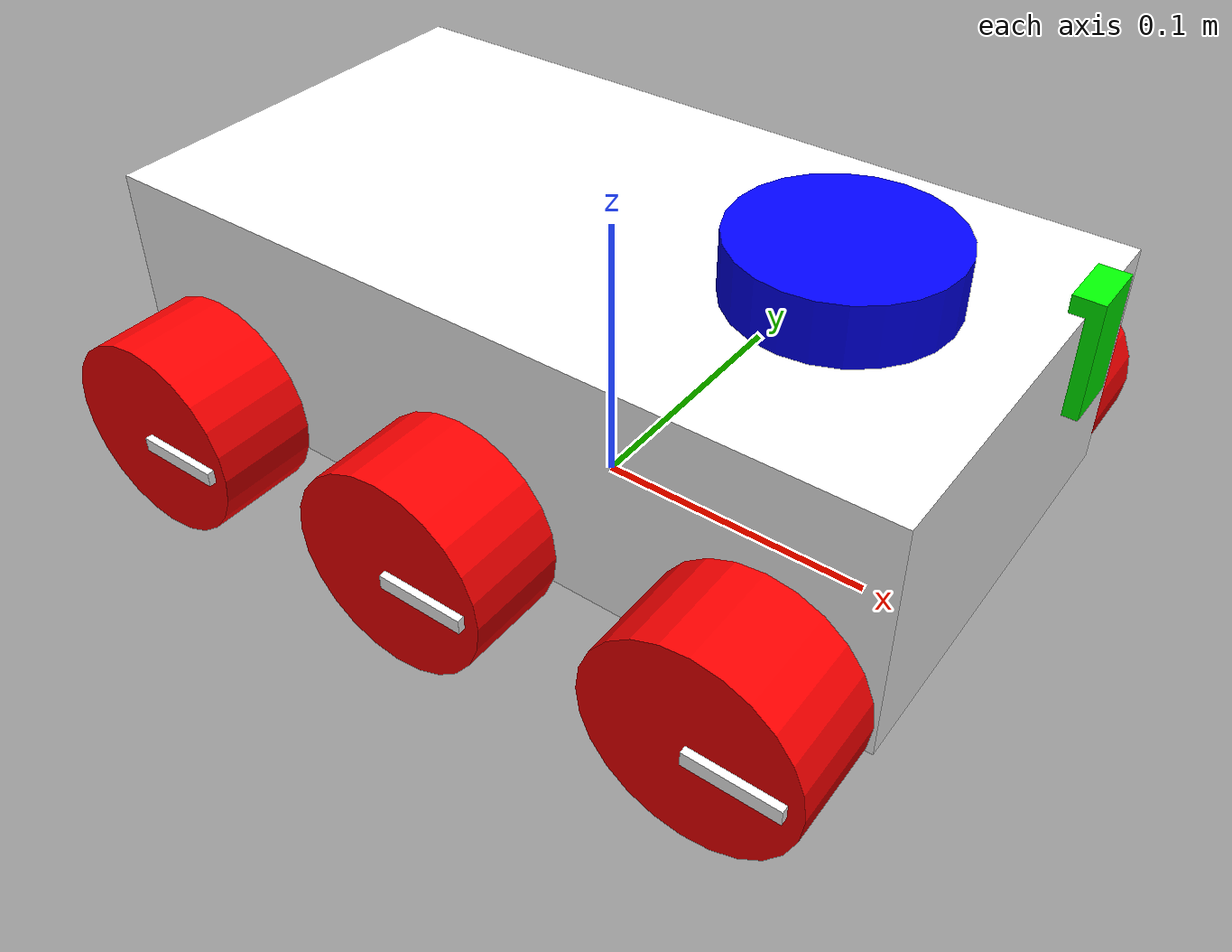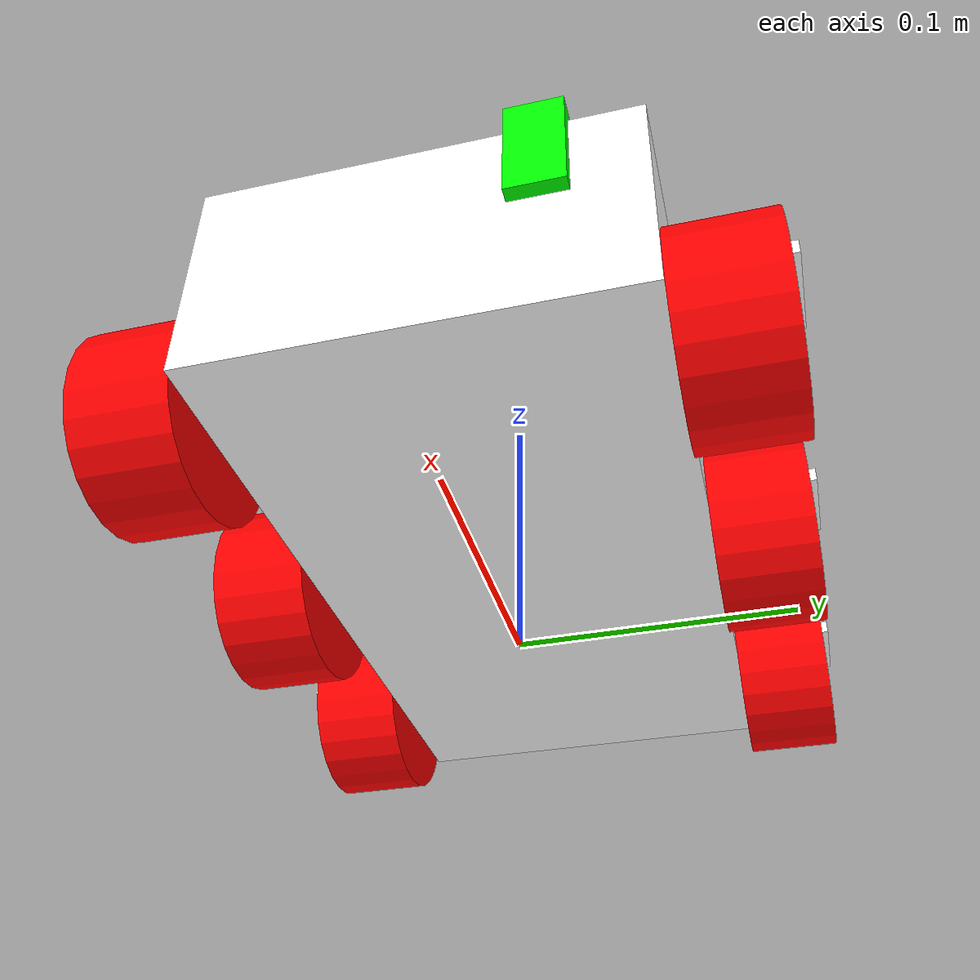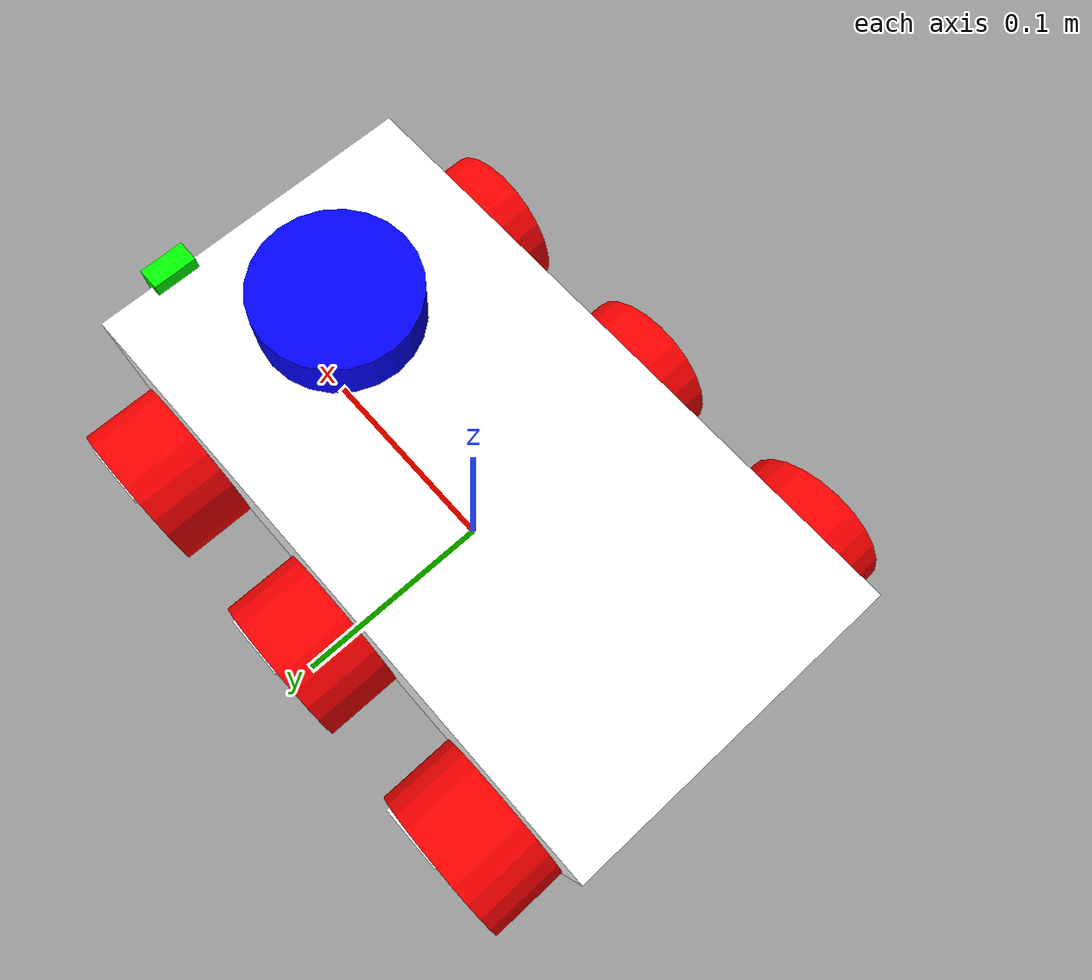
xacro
<?xml version="1.0"?>
<robot xmlns:xacro="http://www.ros.org/wiki/xacro"  name="bartrover">

    <xacro:arg name="use_ros2_control" default="true"/>
    <xacro:arg name="sim_mode" default="false"/>

    <!-- ********************** CALLING ALL XACRO FILES *********************************  -->
    <xacro:include filename="bartrover_core.xacro" />
    <xacro:include filename="lidar.xacro" />
    <xacro:include filename="camera.xacro" />

    <xacro:if value="$(arg use_ros2_control)">
        <xacro:include filename="ros2_control.xacro" />
    </xacro:if>
    <xacro:unless value="$(arg use_ros2_control)">
        <xacro:include filename="gazebo_control.xacro" />
    </xacro:unless>

</robot>

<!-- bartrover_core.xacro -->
<robot xmlns:xacro="http://www.ros.org/wiki/xacro"  name="bartrover">

    <!-- ********************** INERTIA MACROS *********************************  -->
    <xacro:include filename="inertial_macros.xacro" />
    <!-- ********************** MATERIAL MACROS *********************************  -->
    <xacro:include filename="material_macros.xacro" />
    <!-- ********************** CONSTANTS MACROS *********************************  -->
    <xacro:include filename="constants_macros.xacro" />

	<!-- ********************** BASE LINK *********************************  -->
    <link name="base_link">
    </link>
    <gazebo reference="base_link">
        <material>Gazebo/White</material>
    </gazebo>

    <!-- ********************** BODY LINK *********************************  -->
    <joint name="base_joint" type="fixed">
        <axis rpy="0 0 0" xyz="0 0 0"/>
        <parent link="base_link" />
        <child link="body_link" />
        <origin xyz="0 0 ${wheel_radius}" rpy="0 0 0"/>
    </joint>

    <link name="body_link">
		<visual>
			<origin xyz="0 0 0.03" rpy="0 0 0" />
            <geometry>
                <box size="${body_length} ${wheel_separation} ${body_height}"/>
            </geometry>
			<material name="White" />
		</visual>
		<collision>
			<origin xyz="0 0 0.03" rpy="0 0 0" />
            <geometry>
                <box size="${body_length} ${wheel_separation} ${body_height}"/>
            </geometry>
		</collision>
        <xacro:inertial_box mass="${body_mass}" x="${body_length}" y="${wheel_separation}" z="${body_height}">
            <origin xyz="0 0 0.03" rpy="0 0 0"/>
        </xacro:inertial_box>
    </link>
    <gazebo reference="body_link">
        <material>Gazebo/White</material>
    </gazebo>

    <!-- ********************** WHEEL LINKS REAR ********************************* -->
    <!-- ********************** LEFT ********************************* -->
    <joint name="rear_left_wheel_joint" type="continuous">
        <parent link="body_link" />
        <child link="rear_left_wheel" />
        <origin xyz="-0.104 ${wheel_separation/2 + wheel_width/2} 0" rpy="0 0 0"/>
        <axis xyz="0 1 0"/>
        <limit effort="${limit_effort}" velocity="${limit_velocity}"/>
        <dynamics damping="${dynamic_damping}" friction="${spinning_friction}"/>
    </joint>

    <link name="rear_left_wheel">
        <visual>
			<origin xyz="0 0 0" rpy="${PI / 2} 0 0" />
            <geometry>
                <cylinder radius="${wheel_radius}" length="${wheel_width}"/>
            </geometry>
            <material name="Red" />
        </visual>
        <collision>
			<origin xyz="0 0 0" rpy="${PI / 2} 0 0" />
            <geometry>
                <cylinder radius="${wheel_radius}" length="${wheel_width}"/>
            </geometry>
        </collision>
        <xacro:inertial_cylinder mass="${wheel_mass}" length="${wheel_width}" radius="${wheel_radius}">
            <origin xyz="0 0 0" rpy="0 0 0"/>
        </xacro:inertial_cylinder>
    </link>
    <gazebo reference="rear_left_wheel">
        <mu1 value="${lateral_friction}" />
        <mu2 value="${spinning_friction}" />
        <kp value="${contact_stiffness}" />
        <kd value="${contact_damping}" />
        <fdir1 value="1 0 0"/>
        <minDepth>0</minDepth>
        <material>Gazebo/Red</material>
    </gazebo>

    <joint name="rear_left_marker_joint" type="fixed">
        <parent link="rear_left_wheel" />
        <child link="rear_left_marker" />
        <origin xyz="0.015 0.0175 0" rpy="0 0 0" />
    </joint>

    <link name="rear_left_marker">
        <visual>
            <origin xyz="0 0 0" rpy="0 0 0" />
            <geometry>
                <box size="0.03 0.005 0.005" />
            </geometry>
            <material name="White" />
        </visual>
        <inertial>
            <mass value="${marker_mass}" />
            <inertia ixx="0.0" ixy="0.0" ixz="0.0" iyy="0.0" iyz="0.0" izz="0.0" />
        </inertial>
    </link>
    <gazebo reference="rear_left_marker">
        <material>Gazebo/White</material>
    </gazebo>

    <!-- ********************** RIGHT ********************************* -->
    <joint name="rear_right_wheel_joint" type="continuous">
        <parent link="body_link" />
        <child link="rear_right_wheel" />
		<origin xyz="-0.104 ${-1 * (wheel_separation/2 + wheel_width/2)} 0" rpy="0 0 0"/>
        <axis xyz="0 1 0"/>
        <limit effort="${limit_effort}" velocity="${limit_velocity}"/>
        <dynamics damping="${dynamic_damping}" friction="${spinning_friction}"/>
    </joint>

    <link name="rear_right_wheel">
        <visual>
			<origin xyz="0 0 0" rpy="${PI / 2} 0 0" />
            <geometry>
                <cylinder length="${wheel_width}" radius="${wheel_radius}"/>
            </geometry>
            <material name="Red" />
        </visual>
        <collision>
			<origin xyz="0 0 0" rpy="${PI / 2} 0 0" />
            <geometry>
                <cylinder length="${wheel_width}" radius="${wheel_radius}"/>
            </geometry>
        </collision>
        <xacro:inertial_cylinder mass="${wheel_mass}" length="${wheel_width}" radius="${wheel_radius}">
            <origin xyz="0 0 0" rpy="0 0 0"/>
        </xacro:inertial_cylinder>
    </link>
    <gazebo reference="rear_right_wheel">
        <mu1 value="${lateral_friction}" />
        <mu2 value="${spinning_friction}" />
        <kp value="${contact_stiffness}" />
        <kd value="${contact_damping}" />
        <fdir1 value="1 0 0"/>
        <minDepth>0</minDepth>
        <material>Gazebo/Red</material>
    </gazebo>

    <joint name="rear_right_marker_joint" type="fixed">
        <parent link="rear_right_wheel" />
        <child link="rear_right_marker" />
        <origin xyz="0.015 -0.0175 0" rpy="0 0 0" />
    </joint>

    <link name="rear_right_marker">
        <visual>
            <origin xyz="0 0 0" rpy="0 0 0" />
            <geometry>
                <box size="0.03 0.005 0.005" />
            </geometry>
            <material name="White" />
        </visual>
        <inertial>
            <mass value="${marker_mass}" />
            <inertia ixx="0.0" ixy="0.0" ixz="0.0" iyy="0.0" iyz="0.0" izz="0.0" />
        </inertial>
    </link>
    <gazebo reference="rear_right_marker">
        <material>Gazebo/White</material>
    </gazebo>

    <!-- ********************** WHEEL LINKS MIDDLE ********************************* -->
    <!-- ********************** LEFT ********************************* -->
    <joint name="middle_left_wheel_joint" type="continuous">
        <parent link="body_link" />
        <child link="middle_left_wheel" />
		<origin xyz="0 ${wheel_separation/2 + wheel_width/2} 0" rpy="0 0 0" />
        <axis xyz="0 1 0"/>
        <limit effort="${limit_effort}" velocity="${limit_velocity}"/>
        <dynamics damping="${dynamic_damping}" friction="${spinning_friction}"/>
    </joint>

    <link name="middle_left_wheel">
        <visual>
			<origin xyz="0 0 0" rpy="${PI / 2} 0 0" />
            <geometry>
                <cylinder length="${wheel_width}" radius="${wheel_radius}"/>
            </geometry>
            <material name="Red" />
        </visual>
        <collision>
			<origin xyz="0 0 0" rpy="${PI / 2} 0 0" />
            <geometry>
                <cylinder length="${wheel_width}" radius="${wheel_radius}"/>
            </geometry>
        </collision>
        <xacro:inertial_cylinder mass="${wheel_mass}" length="${wheel_width}" radius="${wheel_radius}">
            <origin xyz="0 0 0" rpy="0 0 0"/>
        </xacro:inertial_cylinder>
    </link>
    <gazebo reference="middle_left_wheel">
        <mu1 value="${lateral_friction}" />
        <mu2 value="${spinning_friction}" />
        <kp value="${contact_stiffness}" />
        <kd value="${contact_damping}" />
        <fdir1 value="1 0 0"/>
        <minDepth>0</minDepth>
        <material>Gazebo/Red</material>
    </gazebo>

    <joint name="middle_left_marker_joint" type="fixed">
        <parent link="middle_left_wheel" />
        <child link="middle_left_marker" />
        <origin xyz="0.015 0.0175 0" rpy="0 0 0" />
    </joint>

    <link name="middle_left_marker">
        <visual>
            <origin xyz="0 0 0" rpy="0 0 0" />
            <geometry>
                <box size="0.03 0.005 0.005" />
            </geometry>
            <material name="White" />
        </visual>
        <inertial>
            <mass value="${marker_mass}" />
            <inertia ixx="0.0" ixy="0.0" ixz="0.0" iyy="0.0" iyz="0.0" izz="0.0" />
        </inertial>
    </link>
    <gazebo reference="middle_left_marker">
        <material>Gazebo/White</material>
    </gazebo>

    <!-- ********************** RIGHT ********************************* -->
    <joint name="middle_right_wheel_joint" type="continuous">
        <parent link="body_link" />
        <child link="middle_right_wheel" />
		<origin xyz="0 ${-1 * (wheel_separation/2 + wheel_width/2)} 0" rpy="0 0 0" />
        <axis xyz="0 1 0"/>
        <limit effort="${limit_effort}" velocity="${limit_velocity}"/>
        <dynamics damping="${dynamic_damping}" friction="${spinning_friction}"/>
    </joint>

    <link name="middle_right_wheel">
        <visual>
			<origin xyz="0 0 0" rpy="${PI / 2} 0 0" />
            <geometry>
                <cylinder length="${wheel_width}" radius="${wheel_radius}"/>
            </geometry>
            <material name="Red" />
        </visual>
        <collision>
			<origin xyz="0 0 0" rpy="${PI / 2} 0 0" />
            <geometry>
                <cylinder length="${wheel_width}" radius="${wheel_radius}"/>
            </geometry>
        </collision>
        <xacro:inertial_cylinder mass="${wheel_mass}" length="${wheel_width}" radius="${wheel_radius}">
            <origin xyz="0 0 0" rpy="0 0 0"/>
        </xacro:inertial_cylinder>
    </link>
    <gazebo reference="middle_right_wheel">
        <mu1 value="${lateral_friction}" />
        <mu2 value="${spinning_friction}" />
        <kp value="${contact_stiffness}" />
        <kd value="${contact_damping}" />
        <fdir1 value="1 0 0"/>
        <minDepth>0</minDepth>
        <material>Gazebo/Red</material>
    </gazebo>

    <joint name="middle_right_marker_joint" type="fixed">
        <parent link="middle_right_wheel" />
        <child link="middle_right_marker" />
        <origin xyz="0.015 -0.0175 0" rpy="0 0 0" />
    </joint>

    <link name="middle_right_marker">
        <visual>
            <origin xyz="0 0 0" rpy="0 0 0" />
            <geometry>
                <box size="0.03 0.005 0.005" />
            </geometry>
            <material name="White" />
        </visual>
        <inertial>
            <mass value="${marker_mass}" />
            <inertia ixx="0.0" ixy="0.0" ixz="0.0" iyy="0.0" iyz="0.0" izz="0.0" />
        </inertial>
    </link>
    <gazebo reference="middle_right_marker">
        <material>Gazebo/White</material>
    </gazebo>

    <!-- ********************** WHEEL LINKS FRONT *********************************  -->
    <!-- ********************** LEFT ********************************* -->
    <joint name="front_left_wheel_joint" type="continuous">
        <parent link="body_link" />
        <child link="front_left_wheel" />
		<origin xyz="0.104 ${wheel_separation/2 + wheel_width/2} 0" rpy="0 0 0" />
        <axis xyz="0 1 0"/>
        <limit effort="${limit_effort}" velocity="${limit_velocity}"/>
        <dynamics damping="${dynamic_damping}" friction="${spinning_friction}"/>
    </joint>

    <link name="front_left_wheel">
        <visual>
			<origin xyz="0 0 0" rpy="${PI / 2} 0 0" />
            <geometry>
                <cylinder length="${wheel_width}" radius="${wheel_radius}"/>
            </geometry>
            <material name="Red" />
        </visual>
        <collision>
			<origin xyz="0 0 0" rpy="${PI / 2} 0 0" />
            <geometry>
                <cylinder length="${wheel_width}" radius="${wheel_radius}"/>
            </geometry>
        </collision>
        <xacro:inertial_cylinder mass="${wheel_mass}" length="${wheel_width}" radius="${wheel_radius}">
            <origin xyz="0 0 0" rpy="0 0 0"/>
        </xacro:inertial_cylinder>
    </link>
    <gazebo reference="front_left_wheel">
        <mu1 value="${lateral_friction}" />
        <mu2 value="${spinning_friction}" />
        <kp value="${contact_stiffness}" />
        <kd value="${contact_damping}" />
        <fdir1 value="1 0 0"/>
        <minDepth>0</minDepth>
        <material>Gazebo/Red</material>
    </gazebo>

    <joint name="front_left_marker_joint" type="fixed">
        <parent link="front_left_wheel" />
        <child link="front_left_marker" />
        <origin xyz="0.015 0.0175 0" rpy="0 0 0" />
    </joint>

    <link name="front_left_marker">
        <visual>
            <origin xyz="0 0 0" rpy="0 0 0" />
            <geometry>
                <box size="0.03 0.005 0.005" />
            </geometry>
            <material name="White" />
        </visual>
        <inertial>
            <mass value="${marker_mass}" />
            <inertia ixx="0.0" ixy="0.0" ixz="0.0" iyy="0.0" iyz="0.0" izz="0.0" />
        </inertial>
    </link>
    <gazebo reference="front_left_marker">
        <material>Gazebo/White</material>
    </gazebo>

    <!-- ********************** RIGHT ********************************* -->
    <joint name="front_right_wheel_joint" type="continuous">
        <parent link="body_link" />
        <child link="front_right_wheel" />
		<origin xyz="0.104 ${-1 * (wheel_separation/2 + wheel_width/2)} 0" rpy="0 0 0" />
        <axis xyz="0 1 0"/>
        <limit effort="${limit_effort}" velocity="${limit_velocity}"/>
        <dynamics damping="${dynamic_damping}" friction="${spinning_friction}"/>
    </joint>

    <link name="front_right_wheel">
        <visual>
			<origin xyz="0 0 0" rpy="${PI / 2} 0 0" />
            <geometry>
                <cylinder length="${wheel_width}" radius="${wheel_radius}"/>
            </geometry>
            <material name="Red" />
        </visual>
        <collision>
			<origin xyz="0 0 0" rpy="${PI / 2} 0 0" />
            <geometry>
                <cylinder length="${wheel_width}" radius="${wheel_radius}"/>
            </geometry>
        </collision>
        <xacro:inertial_cylinder mass="${wheel_mass}" length="${wheel_width}" radius="${wheel_radius}">
            <origin xyz="0 0 0" rpy="0 0 0"/>
        </xacro:inertial_cylinder>
    </link>
    <gazebo reference="front_right_wheel">
        <mu1 value="${lateral_friction}" />
        <mu2 value="${spinning_friction}" />
        <kp value="${contact_stiffness}" />
        <kd value="${contact_damping}" />
        <fdir1 value="1 0 0"/>
        <minDepth>0</minDepth>
        <material>Gazebo/Red</material>
    </gazebo>

    <joint name="front_right_marker_joint" type="fixed">
        <parent link="front_right_wheel" />
        <child link="front_right_marker" />
        <origin xyz="0.015 -0.0175 0" rpy="0 0 0" />
    </joint>

    <link name="front_right_marker">
        <visual>
            <origin xyz="0 0 0" rpy="0 0 0" />
            <geometry>
                <box size="0.03 0.005 0.005" />
            </geometry>
            <material name="White" />
        </visual>
        <inertial>
            <mass value="${marker_mass}" />
            <inertia ixx="0.0" ixy="0.0" ixz="0.0" iyy="0.0" iyz="0.0" izz="0.0" />
        </inertial>
    </link>
    <gazebo reference="front_right_marker">
        <material>Gazebo/White</material>
    </gazebo>

</robot>

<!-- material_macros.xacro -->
<robot xmlns:xacro="http://www.ros.org/wiki/xacro">

    <!-- Specify Material Properties -->

	<material name="Green">
		<color rgba="0.0 1.0 0.0 1.0"/>
	</material>
	<material name="Blue">
		<color rgba="0.0 0.0 1.0 1.0"/>
	</material>
	<material name="Red">
		<color rgba="1.0 0.0 0.0 1.0"/>
	</material>
	<material name="White">
		<color rgba="1.0 1.0 1.0 1.0"/>
	</material>
	<material name="Yellow">
		<color rgba="1.0 1.0 0.0 1.0"/>
	</material>
</robot>

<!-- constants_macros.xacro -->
<robot xmlns:xacro="http://www.ros.org/wiki/xacro" >

    <!-- Specify Some Useful Robot Constants -->

    <!-- ********************** ROBOT CONSTANTS *********************************  -->
    <xacro:property name="PI" value="3.1415926"/>
    <xacro:property name="clearance" value="0.035" />
    <xacro:property name="body_length" value="0.28"/>
    <xacro:property name="body_height" value="0.08"/>
    <xacro:property name="wheel_separation" value="0.15"/>
    <xacro:property name="wheel_radius" value="0.035"/>
    <xacro:property name="wheel_width" value="0.035"/>

    <xacro:property name="steel_density" value="7850"/> <!--Steel-->
    <xacro:property name="body_density" value="${steel_density/3}"/>
    <xacro:property name="wheel_density" value="900"/> <!--Rubber-->
    <xacro:property name="body_mass" value="${body_density * body_length * body_height * wheel_separation}"/>
    <xacro:property name="wheel_mass" value="${wheel_density * PI * wheel_radius * wheel_radius * wheel_width}"/>
    <xacro:property name="marker_mass" value="0.0"/>

    <xacro:property name="wheel_ixx" value="${wheel_mass*(3*wheel_radius*wheel_radius+wheel_width*wheel_width)/12}" />
    <xacro:property name="wheel_ixy" value="0.0" />
    <xacro:property name="wheel_ixz" value="0.0" />
    <xacro:property name="wheel_iyy" value="${wheel_mass*(3*wheel_radius*wheel_radius+wheel_width*wheel_width)/12}" />
    <xacro:property name="wheel_iyz" value="0.0" />
    <xacro:property name="wheel_izz" value="${wheel_mass*wheel_radius*wheel_radius/2}" />

    <xacro:property name="dynamic_damping" value="0.1" />
    <xacro:property name="limit_effort" value="100" />
    <xacro:property name="limit_velocity" value="10" />

    <!-- ********************** GAZEBO CONSTANTS *********************************  -->
    <xacro:property name="lateral_friction" value="1.0" />
    <xacro:property name="spinning_friction" value="0.1" />
    <xacro:property name="contact_stiffness" value="10000000.0" />
    <xacro:property name="contact_damping" value="1.0" />

</robot>

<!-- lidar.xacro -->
<robot xmlns:xacro="http://www.ros.org/wiki/xacro" >

    <!-- ********************** LIDAR CONSTANTS *********************************  -->
    <xacro:property name="lidar_x" value="0.04" />
    <xacro:property name="lidar_y" value="0.0" />
    <xacro:property name="lidar_z" value="0.04" />
    <xacro:property name="lidar_rad" value="0.035" />
    <xacro:property name="lidar_ht" value="0.02" />

    <!-- ********************** Physical Characteristics *********************************  -->
    <joint name="lidar_joint" type="fixed">
        <parent link="body_link"/>
        <child link="lidar"/>
        <origin xyz="${lidar_x} ${lidar_y} ${lidar_z +.05}" rpy="0 0 0"/>
    </joint>

    <link name="lidar">
        <visual>
            <origin xyz="${lidar_x} ${lidar_y} ${lidar_z -.05}" rpy="0 0 0" />
            <geometry>
                <cylinder radius="${lidar_rad}" length="${lidar_ht}"/>
            </geometry>
            <material name="Blue" />
        </visual>

        <collision>
            <origin xyz="${lidar_x} ${lidar_y} ${lidar_z - .05}" rpy="0 0 0"/>
            <geometry>
                <cylinder radius="${lidar_rad}" length="${lidar_ht}"/>
            </geometry>
        </collision>

        <xacro:inertial_cylinder mass="0.1" length="${lidar_ht}" radius="${lidar_rad}">
            <origin xyz="${lidar_x} ${lidar_y} ${lidar_z - .05}" rpy="0 0 0" />
        </xacro:inertial_cylinder>
    </link>

    <!-- ********************** Gazebo Characteristics *********************************  -->
    <gazebo reference="lidar">
        <material>Gazebo/Blue</material>

        <sensor name="lidar" type="gpu_lidar">
            <pose> 0 0 0 0 0 0 </pose>
            <always_on>true</always_on>
            <visualize>true</visualize>
            <update_rate>10</update_rate>
            <topic>scan</topic>
            <gz_frame_id>base_scan</gz_frame_id>
            <lidar>
                <scan>
                    <horizontal>
                        <samples>360</samples>
                        <min_angle>-3.14</min_angle>
                        <max_angle>3.14</max_angle>
                    </horizontal>
                </scan>
                <range>
                    <min>0.3</min>
                    <max>12</max>
                    <resolution>0.01</resolution>
                </range>
                <noise>
                    <type>gaussian</type>
                    <mean>0.0</mean>
                    <stddev>0.001</stddev>
                </noise>
            </lidar>

        </sensor>
    </gazebo>

</robot>

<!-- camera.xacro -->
<robot xmlns:xacro="http://www.ros.org/wiki/xacro" >

    <!-- ********************** CAMERA CONSTANTS *********************************  -->
    <xacro:property name="camera_height" value="0.04" />
    <xacro:property name="camera_width" value="0.02" />
    <xacro:property name="camera_thick" value="0.01" />
    <xacro:property name="camera_x" value="0.12" />
    <xacro:property name="camera_y" value="0.02" />
    <xacro:property name="camera_z" value="0.064" />

    <!-- ********************** Physical Characteristics *********************************  -->
    <joint name="camera_joint" type="fixed">
        <parent link="body_link"/>
        <child link="camera"/>
        <origin xyz="${camera_x} ${camera_y} ${camera_z}" rpy="0 0 0"/>
    </joint>

    <link name="camera">
        <visual>
            <origin xyz="${camera_x - .1} ${camera_y} ${camera_z -.072}" rpy="0 0 0" />
            <geometry>
                <box size="${camera_thick} ${camera_width} ${camera_height}" />
            </geometry>
            <material name="Green" />
        </visual>
    </link>

    <!-- ********************** Gazebo Characteristics *********************************  -->
    <gazebo reference="camera">
        <material>Gazebo/Green</material>

        <sensor name="camera" type="camera">
            <pose> 0 0 0 0 0 0 </pose>
            <visualize>true</visualize>
            <update_rate>10</update_rate>
            <topic>camera/image_raw</topic>
            <gz_frame_id>camera_rgb_frame</gz_frame_id>
            <camera>
                <camera_info_topic>camera/camera_info</camera_info_topic>
                <horizontal_fov>1.089</horizontal_fov>
                <image>
                    <format>R8G8B8</format>
                    <width>640</width>
                    <height>480</height>
                </image>
                <clip>
                    <near>0.05</near>
                    <far>8.0</far>
                </clip>
                <noise>
                    <type>gaussian</type>
                    <mean>0.0</mean>
                    <stddev>0.007</stddev>
                </noise>
            </camera>

        </sensor>
    </gazebo>

</robot>
